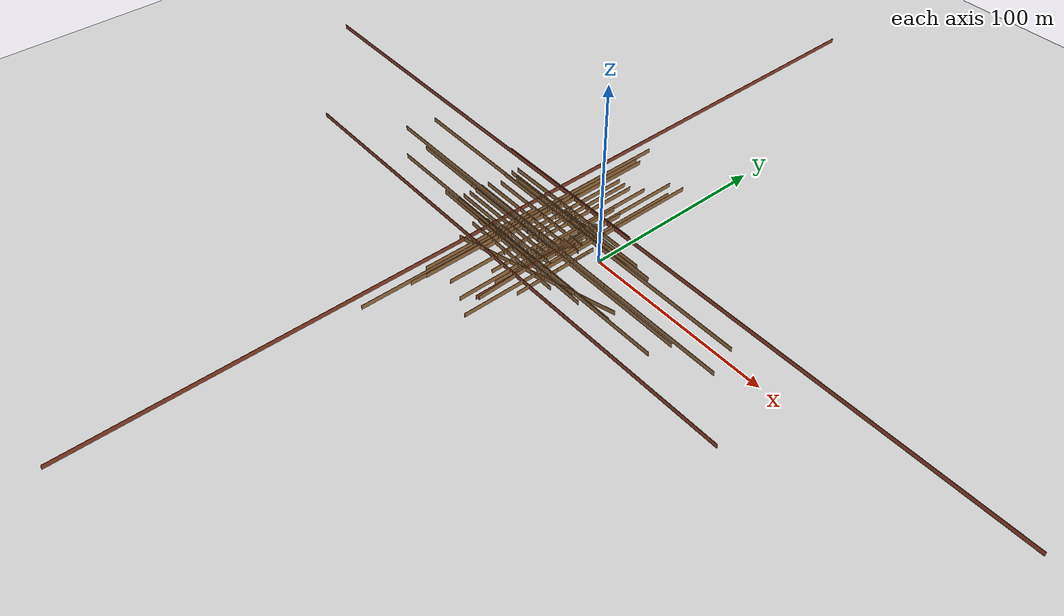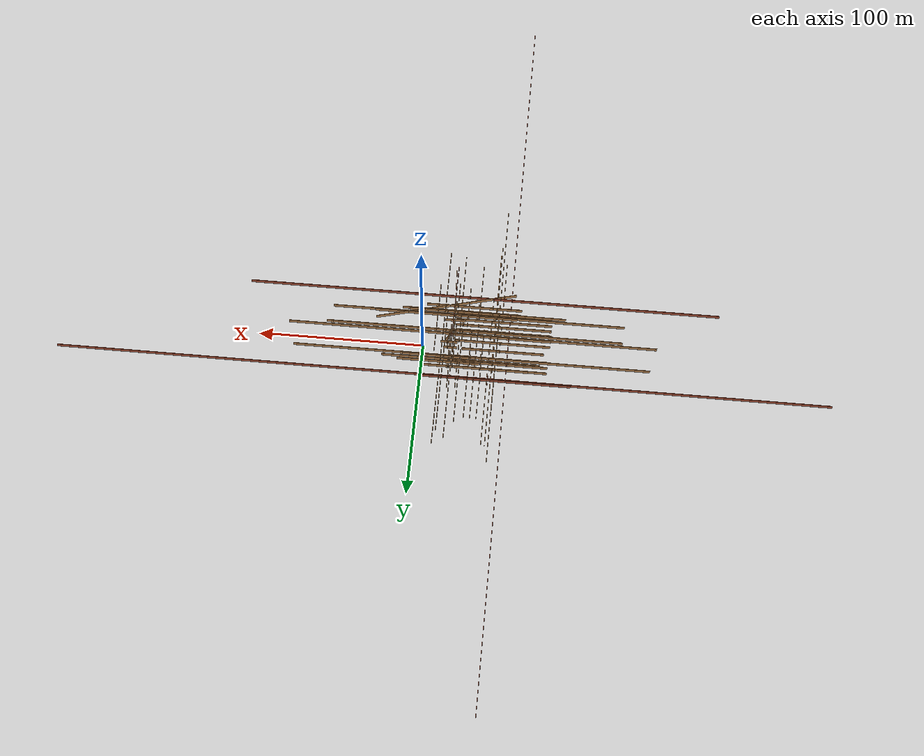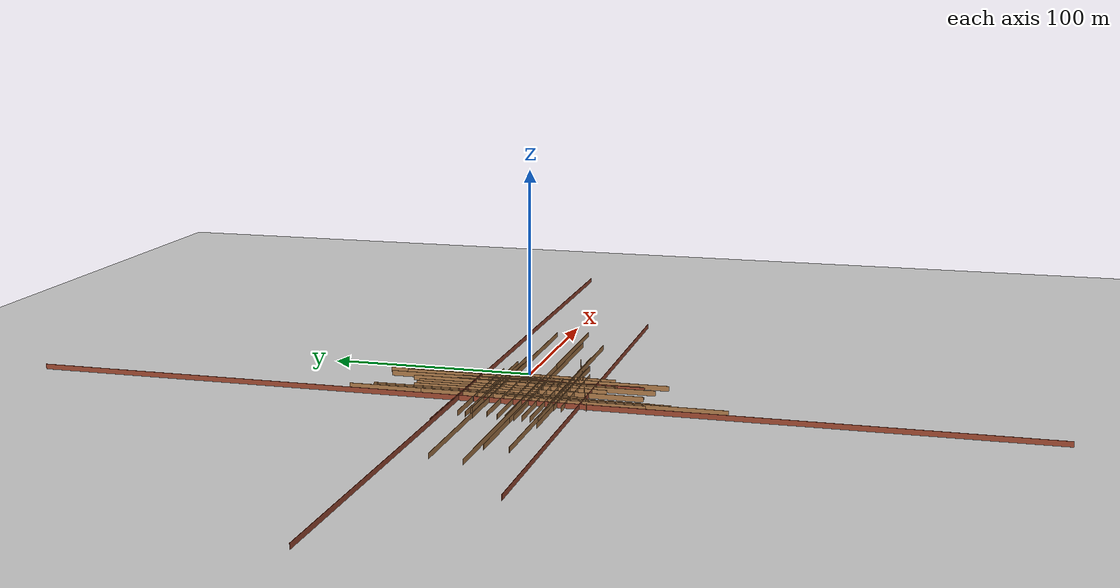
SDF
<sdf version="1.6">
 <world name="default">
  <model name="ground_plane">
   <static>1</static>
   <link name="link">
    <collision name="collision">
     <geometry><plane><normal>0 0 1</normal><size>1000 700</size></plane></geometry>
     <surface><friction><ode><mu>100</mu><mu2>50</mu2></ode></friction></surface>
    </collision>
    <visual name="visual">
     <cast_shadows>0</cast_shadows>
     <geometry><plane><normal>0 0 1</normal><size>1000 700</size></plane></geometry>
     <material>
      <ambient>1.0 1.0 1.0 1.0</ambient>
      <diffuse>0.8 0.8 0.8 1.0</diffuse>
      <specular>0.01 0.01 0.01 1.000000</specular>
     </material>
    </visual>
   </link>
  </model>
  <model name="floorPlan">
   <pose>-1.03517 -1.87284 0 0 -0 0</pose>
   <link name="Wall_101">
    <collision name="Wall_101_Collision">
     <geometry><box><size>89.50 0.15 2.50</size></box></geometry>
     <pose>0 0 1.25 0 -0 0</pose>
    </collision>
    <visual name="Wall_101_Visual">
     <pose>0 0 1.25 0 -0 0</pose>
     <geometry><box><size>89.50 0.15 2.50</size></box></geometry>
     <material>
      <script><uri>file://media/materials/scripts/gazebo.material</uri><name>Gazebo/Bricks</name></script>
      <ambient>1 1 1 1</ambient>
     </material>
     <meta><layer>0</layer></meta>
    </visual>
    <pose>-45.3755 22.7356 0 0 -0 0</pose>
   </link>
   <link name="Wall_102">
    <collision name="Wall_102_Collision">
     <geometry><box><size>6.20 0.15 2.50</size></box></geometry>
     <pose>0 0 1.25 0 -0 0</pose>
    </collision>
    <visual name="Wall_102_Visual">
     <pose>0 0 1.25 0 -0 0</pose>
     <geometry><box><size>6.20 0.15 2.50</size></box></geometry>
     <material>
      <script><uri>file://media/materials/scripts/gazebo.material</uri><name>Gazebo/Bricks</name></script>
      <ambient>1 1 1 1</ambient>
     </material>
     <meta><layer>0</layer></meta>
    </visual>
    <pose>-40.0755 22.4356 0 0 0 -1.5708</pose>
   </link>
   <link name="Wall_103">
    <collision name="Wall_103_Collision">
     <geometry><box><size>468.60 0.15 2.50</size></box></geometry>
     <pose>0 0 1.25 0 -0 0</pose>
    </collision>
    <visual name="Wall_103_Visual">
     <pose>0 0 1.25 0 -0 0</pose>
     <geometry><box><size>468.60 0.15 2.50</size></box></geometry>
     <material>
      <script><uri>file://media/materials/scripts/gazebo.material</uri><name>Gazebo/Bricks</name></script>
      <ambient>1 1 1 1</ambient>
     </material>
     <meta><layer>0</layer></meta>
    </visual>
    <pose>-12.0255 22.1356 0 0 -0 0</pose>
   </link>
   <link name="Wall_129">
    <collision name="Wall_129_Collision">
     <geometry><box><size>141.60 0.15 2.50</size></box></geometry>
     <pose>0 0 1.25 0 -0 0</pose>
    </collision>
    <visual name="Wall_129_Visual">
     <pose>0 0 1.25 0 -0 0</pose>
     <geometry><box><size>141.60 0.15 2.50</size></box></geometry>
     <material>
      <script><uri>file://media/materials/scripts/gazebo.material</uri><name>Gazebo/Wood</name></script>
      <ambient>1 1 1 1</ambient>
     </material>
     <meta><layer>0</layer></meta>
    </visual>
    <pose>-9.61757 -10.458 0 0 -0 3.14159</pose>
   </link>
   <link name="Wall_130">
    <collision name="Wall_130_Collision">
     <geometry><box><size>62.50 0.15 2.50</size></box></geometry>
     <pose>0 0 1.25 0 -0 0</pose>
    </collision>
    <visual name="Wall_130_Visual">
     <pose>0 0 1.25 0 -0 0</pose>
     <geometry><box><size>62.50 0.15 2.50</size></box></geometry>
     <material>
      <script><uri>file://media/materials/scripts/gazebo.material</uri><name>Gazebo/Wood</name></script>
      <ambient>1 1 1 1</ambient>
     </material>
     <meta><layer>0</layer></meta>
    </visual>
    <pose>-18.0426 -14.133 0 0 0 -1.5708</pose>
   </link>
   <link name="Wall_131">
    <collision name="Wall_131_Collision">
     <geometry><box><size>12.50 0.15 2.50</size></box></geometry>
     <pose>0 0 1.25 0 -0 0</pose>
    </collision>
    <visual name="Wall_131_Visual">
     <pose>0 0 1.25 0 -0 0</pose>
     <geometry><box><size>12.50 0.15 2.50</size></box></geometry>
     <material>
      <script><uri>file://media/materials/scripts/gazebo.material</uri><name>Gazebo/Wood</name></script>
      <ambient>1 1 1 1</ambient>
     </material>
     <meta><layer>0</layer></meta>
    </visual>
    <pose>-17.3676 -17.808 0 0 -0 0</pose>
   </link>
   <link name="Wall_133">
    <collision name="Wall_133_Collision">
     <geometry><box><size>87.50 0.15 2.50</size></box></geometry>
     <pose>0 0 1.25 0 -0 0</pose>
    </collision>
    <visual name="Wall_133_Visual">
     <pose>0 0 1.25 0 -0 0</pose>
     <geometry><box><size>87.50 0.15 2.50</size></box></geometry>
     <material>
      <script><uri>file://media/materials/scripts/gazebo.material</uri><name>Gazebo/Wood</name></script>
      <ambient>1 1 1 1</ambient>
     </material>
     <meta><layer>0</layer></meta>
    </visual>
    <pose>-11.2193 -21.215 0 0 -0 0</pose>
   </link>
   <link name="Wall_134">
    <collision name="Wall_134_Collision">
     <geometry><box><size>6.90 0.15 2.50</size></box></geometry>
     <pose>0 0 1.25 0 -0 0</pose>
    </collision>
    <visual name="Wall_134_Visual">
     <pose>0 0 1.25 0 -0 0</pose>
     <geometry><box><size>6.90 0.15 2.50</size></box></geometry>
     <material>
      <script><uri>file://media/materials/scripts/gazebo.material</uri><name>Gazebo/Wood</name></script>
      <ambient>1 1 1 1</ambient>
     </material>
     <meta><layer>0</layer></meta>
    </visual>
    <pose>-6.06127 -21.5509 0 0 0 -1.62113</pose>
   </link>
   <link name="Wall_137">
    <collision name="Wall_137_Collision">
     <geometry><box><size>64.20 0.15 2.50</size></box></geometry>
     <pose>0 0 1.25 0 -0 0</pose>
    </collision>
    <visual name="Wall_137_Visual">
     <pose>0 0 1.25 0 -0 0</pose>
     <geometry><box><size>64.20 0.15 2.50</size></box></geometry>
     <material>
      <script><uri>file://media/materials/scripts/gazebo.material</uri><name>Gazebo/Wood</name></script>
      <ambient>1 1 1 1</ambient>
     </material>
     <meta><layer>0</layer></meta>
    </visual>
    <pose>-16.2349 -24.9897 0 0 0 -1.52859</pose>
   </link>
   <link name="Wall_139">
    <collision name="Wall_139_Collision">
     <geometry><box><size>72.90 0.15 2.50</size></box></geometry>
     <pose>0 0 1.25 0 -0 0</pose>
    </collision>
    <visual name="Wall_139_Visual">
     <pose>0 0 1.25 0 -0 0</pose>
     <geometry><box><size>72.90 0.15 2.50</size></box></geometry>
     <material>
      <script><uri>file://media/materials/scripts/gazebo.material</uri><name>Gazebo/Wood</name></script>
      <ambient>1 1 1 1</ambient>
     </material>
     <meta><layer>0</layer></meta>
    </visual>
    <pose>-20.4877 -24.4086 0 0 -0 3.14159</pose>
   </link>
   <link name="Wall_140">
    <collision name="Wall_140_Collision">
     <geometry><box><size>31.20 0.15 2.50</size></box></geometry>
     <pose>0 0 1.25 0 -0 0</pose>
    </collision>
    <visual name="Wall_140_Visual">
     <pose>0 0 1.25 0 -0 0</pose>
     <geometry><box><size>31.20 0.15 2.50</size></box></geometry>
     <material>
      <script><uri>file://media/materials/scripts/gazebo.material</uri><name>Gazebo/Wood</name></script>
      <ambient>1 1 1 1</ambient>
     </material>
     <meta><layer>0</layer></meta>
    </visual>
    <pose>-24.7877 -26.2086 0 0 0 -1.5708</pose>
   </link>
   <link name="Wall_141">
    <collision name="Wall_141_Collision">
     <geometry><box><size>58.30 0.15 2.50</size></box></geometry>
     <pose>0 0 1.25 0 -0 0</pose>
    </collision>
    <visual name="Wall_141_Visual">
     <pose>0 0 1.25 0 -0 0</pose>
     <geometry><box><size>58.30 0.15 2.50</size></box></geometry>
     <material>
      <script><uri>file://media/materials/scripts/gazebo.material</uri><name>Gazebo/Wood</name></script>
      <ambient>1 1 1 1</ambient>
     </material>
     <meta><layer>0</layer></meta>
    </visual>
    <pose>-28.2127 -28.0086 0 0 -0 3.14159</pose>
   </link>
   <link name="Wall_142">
    <collision name="Wall_142_Collision">
     <geometry><box><size>58.30 0.15 2.50</size></box></geometry>
     <pose>0 0 1.25 0 -0 0</pose>
    </collision>
    <visual name="Wall_142_Visual">
     <pose>0 0 1.25 0 -0 0</pose>
     <geometry><box><size>58.30 0.15 2.50</size></box></geometry>
     <material>
      <script><uri>file://media/materials/scripts/gazebo.material</uri><name>Gazebo/Wood</name></script>
      <ambient>1 1 1 1</ambient>
     </material>
     <meta><layer>0</layer></meta>
    </visual>
    <pose>-31.6377 -31.4336 0 0 0 -1.5708</pose>
   </link>
   <link name="Wall_144">
    <collision name="Wall_144_Collision">
     <geometry><box><size>10.40 0.15 2.50</size></box></geometry>
     <pose>0 0 1.25 0 -0 0</pose>
    </collision>
    <visual name="Wall_144_Visual">
     <pose>0 0 1.25 0 -0 0</pose>
     <geometry><box><size>10.40 0.15 2.50</size></box></geometry>
     <material>
      <script><uri>file://media/materials/scripts/gazebo.material</uri><name>Gazebo/Wood</name></script>
      <ambient>1 1 1 1</ambient>
     </material>
     <meta><layer>0</layer></meta>
    </visual>
    <pose>-30.9008 -24.4847 0 0 -0 1.5708</pose>
   </link>
   <link name="Wall_146">
    <collision name="Wall_146_Collision">
     <geometry><box><size>95.80 0.15 2.50</size></box></geometry>
     <pose>0 0 1.25 0 -0 0</pose>
    </collision>
    <visual name="Wall_146_Visual">
     <pose>0 0 1.25 0 -0 0</pose>
     <geometry><box><size>95.80 0.15 2.50</size></box></geometry>
     <material>
      <script><uri>file://media/materials/scripts/gazebo.material</uri><name>Gazebo/Wood</name></script>
      <ambient>1 1 1 1</ambient>
     </material>
     <meta><layer>0</layer></meta>
    </visual>
    <pose>-36.5758 -23.9347 0 0 -0 3.14159</pose>
   </link>
   <link name="Wall_147">
    <collision name="Wall_147_Collision">
     <geometry><box><size>91.60 0.15 2.50</size></box></geometry>
     <pose>0 0 1.25 0 -0 0</pose>
    </collision>
    <visual name="Wall_147_Visual">
     <pose>0 0 1.25 0 -0 0</pose>
     <geometry><box><size>91.60 0.15 2.50</size></box></geometry>
     <material>
      <script><uri>file://media/materials/scripts/gazebo.material</uri><name>Gazebo/Wood</name></script>
      <ambient>1 1 1 1</ambient>
     </material>
     <meta><layer>0</layer></meta>
    </visual>
    <pose>-42.2508 -29.3597 0 0 0 -1.5708</pose>
   </link>
   <link name="Wall_149">
    <collision name="Wall_149_Collision">
     <geometry><box><size>66.60 0.15 2.50</size></box></geometry>
     <pose>0 0 1.25 0 -0 0</pose>
    </collision>
    <visual name="Wall_149_Visual">
     <pose>0 0 1.25 0 -0 0</pose>
     <geometry><box><size>66.60 0.15 2.50</size></box></geometry>
     <material>
      <script><uri>file://media/materials/scripts/gazebo.material</uri><name>Gazebo/Wood</name></script>
      <ambient>1 1 1 1</ambient>
     </material>
     <meta><layer>0</layer></meta>
    </visual>
    <pose>-45.7877 -30.8032 0 0 0 -1.5708</pose>
   </link>
   <link name="Wall_151">
    <collision name="Wall_151_Collision">
     <geometry><box><size>58.30 0.15 2.50</size></box></geometry>
     <pose>0 0 1.25 0 -0 0</pose>
    </collision>
    <visual name="Wall_151_Visual">
     <pose>0 0 1.25 0 -0 0</pose>
     <geometry><box><size>58.30 0.15 2.50</size></box></geometry>
     <material>
      <script><uri>file://media/materials/scripts/gazebo.material</uri><name>Gazebo/Wood</name></script>
      <ambient>1 1 1 1</ambient>
     </material>
     <meta><layer>0</layer></meta>
    </visual>
    <pose>-47.1627 -22.3564 0 0 -0 0</pose>
   </link>
   <link name="Wall_152">
    <collision name="Wall_152_Collision">
     <geometry><box><size>179.10 0.15 2.50</size></box></geometry>
     <pose>0 0 1.25 0 -0 0</pose>
    </collision>
    <visual name="Wall_152_Visual">
     <pose>0 0 1.25 0 -0 0</pose>
     <geometry><box><size>179.10 0.15 2.50</size></box></geometry>
     <material>
      <script><uri>file://media/materials/scripts/gazebo.material</uri><name>Gazebo/Wood</name></script>
      <ambient>1 1 1 1</ambient>
     </material>
     <meta><layer>0</layer></meta>
    </visual>
    <pose>-43.7377 -11.6814 0 0 -0 1.5708</pose>
   </link>
   <link name="Wall_154">
    <collision name="Wall_154_Collision">
     <geometry><box><size>95.80 0.15 2.50</size></box></geometry>
     <pose>0 0 1.25 0 -0 0</pose>
    </collision>
    <visual name="Wall_154_Visual">
     <pose>0 0 1.25 0 -0 0</pose>
     <geometry><box><size>95.80 0.15 2.50</size></box></geometry>
     <material>
      <script><uri>file://media/materials/scripts/gazebo.material</uri><name>Gazebo/Wood</name></script>
      <ambient>1 1 1 1</ambient>
     </material>
     <meta><layer>0</layer></meta>
    </visual>
    <pose>-20.5182 -16.0314 0 0 0 -1.5616</pose>
   </link>
   <link name="Wall_155">
    <collision name="Wall_155_Collision">
     <geometry><box><size>179.10 0.15 2.50</size></box></geometry>
     <pose>0 0 1.25 0 -0 0</pose>
    </collision>
    <visual name="Wall_155_Visual">
     <pose>0 0 1.25 0 -0 0</pose>
     <geometry><box><size>179.10 0.15 2.50</size></box></geometry>
     <material>
      <script><uri>file://media/materials/scripts/gazebo.material</uri><name>Gazebo/Wood</name></script>
      <ambient>1 1 1 1</ambient>
     </material>
     <meta><layer>0</layer></meta>
    </visual>
    <pose>-31.1758 -21.7064 0 0 -0 3.14159</pose>
   </link>
   <link name="Wall_158">
    <collision name="Wall_158_Collision">
     <geometry><box><size>95.80 0.15 2.50</size></box></geometry>
     <pose>0 0 1.25 0 -0 0</pose>
    </collision>
    <visual name="Wall_158_Visual">
     <pose>0 0 1.25 0 -0 0</pose>
     <geometry><box><size>95.80 0.15 2.50</size></box></geometry>
     <material>
      <script><uri>file://media/materials/scripts/gazebo.material</uri><name>Gazebo/Wood</name></script>
      <ambient>1 1 1 1</ambient>
     </material>
     <meta><layer>0</layer></meta>
    </visual>
    <pose>-41.8508 -16.0314 0 0 -0 1.5708</pose>
   </link>
   <link name="Wall_159">
    <collision name="Wall_159_Collision">
     <geometry><box><size>177.00 0.15 2.50</size></box></geometry>
     <pose>0 0 1.25 0 -0 0</pose>
    </collision>
    <visual name="Wall_159_Visual">
     <pose>0 0 1.25 0 -0 0</pose>
     <geometry><box><size>177.00 0.15 2.50</size></box></geometry>
     <material>
      <script><uri>file://media/materials/scripts/gazebo.material</uri><name>Gazebo/Wood</name></script>
      <ambient>1 1 1 1</ambient>
     </material>
     <meta><layer>0</layer></meta>
    </visual>
    <pose>-31.3008 -10.3564 0 0 -0 0</pose>
   </link>
   <link name="Wall_161">
    <collision name="Wall_161_Collision">
     <geometry><box><size>41.70 0.15 2.50</size></box></geometry>
     <pose>0 0 1.25 0 -0 0</pose>
    </collision>
    <visual name="Wall_161_Visual">
     <pose>0 0 1.25 0 -0 0</pose>
     <geometry><box><size>41.70 0.15 2.50</size></box></geometry>
     <material>
      <script><uri>file://media/materials/scripts/gazebo.material</uri><name>Gazebo/Wood</name></script>
      <ambient>1 1 1 1</ambient>
     </material>
     <meta><layer>0</layer></meta>
    </visual>
    <pose>-7.97942 8.30014 0 0 -0 3.14159</pose>
   </link>
   <link name="Wall_162">
    <collision name="Wall_162_Collision">
     <geometry><box><size>137.40 0.15 2.50</size></box></geometry>
     <pose>0 0 1.25 0 -0 0</pose>
    </collision>
    <visual name="Wall_162_Visual">
     <pose>0 0 1.25 0 -0 0</pose>
     <geometry><box><size>137.40 0.15 2.50</size></box></geometry>
     <material>
      <script><uri>file://media/materials/scripts/gazebo.material</uri><name>Gazebo/Wood</name></script>
      <ambient>1 1 1 1</ambient>
     </material>
     <meta><layer>0</layer></meta>
    </visual>
    <pose>-10.4044 0.125141 0 0 0 -1.5708</pose>
   </link>
   <link name="Wall_163">
    <collision name="Wall_163_Collision">
     <geometry><box><size>45.80 0.15 2.50</size></box></geometry>
     <pose>0 0 1.25 0 -0 0</pose>
    </collision>
    <visual name="Wall_163_Visual">
     <pose>0 0 1.25 0 -0 0</pose>
     <geometry><box><size>45.80 0.15 2.50</size></box></geometry>
     <material>
      <script><uri>file://media/materials/scripts/gazebo.material</uri><name>Gazebo/Wood</name></script>
      <ambient>1 1 1 1</ambient>
     </material>
     <meta><layer>0</layer></meta>
    </visual>
    <pose>-7.72942 -8.04986 0 0 -0 0</pose>
   </link>
   <link name="Wall_169">
    <collision name="Wall_169_Collision">
     <geometry><box><size>6.20 0.15 2.50</size></box></geometry>
     <pose>0 0 1.25 0 -0 0</pose>
    </collision>
    <visual name="Wall_169_Visual">
     <pose>0 0 1.25 0 -0 0</pose>
     <geometry><box><size>6.20 0.15 2.50</size></box></geometry>
     <material>
      <script><uri>file://media/materials/scripts/gazebo.material</uri><name>Gazebo/Wood</name></script>
      <ambient>1 1 1 1</ambient>
     </material>
     <meta><layer>0</layer></meta>
    </visual>
    <pose>-6.04 -1.72161 0 0 -0 1.5708</pose>
   </link>
   <link name="Wall_170">
    <collision name="Wall_170_Collision">
     <geometry><box><size>10.40 0.15 2.50</size></box></geometry>
     <pose>0 0 1.25 0 -0 0</pose>
    </collision>
    <visual name="Wall_170_Visual">
     <pose>0 0 1.25 0 -0 0</pose>
     <geometry><box><size>10.40 0.15 2.50</size></box></geometry>
     <material>
      <script><uri>file://media/materials/scripts/gazebo.material</uri><name>Gazebo/Wood</name></script>
      <ambient>1 1 1 1</ambient>
     </material>
     <meta><layer>0</layer></meta>
    </visual>
    <pose>-6.04 -0.871614 0 0 -0 1.5708</pose>
   </link>
   <link name="Wall_182">
    <collision name="Wall_182_Collision">
     <geometry><box><size>224.90 0.15 2.50</size></box></geometry>
     <pose>0 0 1.25 0 -0 0</pose>
    </collision>
    <visual name="Wall_182_Visual">
     <pose>0 0 1.25 0 -0 0</pose>
     <geometry><box><size>224.90 0.15 2.50</size></box></geometry>
     <material>
      <script><uri>file://media/materials/scripts/gazebo.material</uri><name>Gazebo/Wood</name></script>
      <ambient>1 1 1 1</ambient>
     </material>
     <meta><layer>0</layer></meta>
    </visual>
    <pose>-28.3707 -8.0129 0 0 -0 3.14159</pose>
   </link>
   <link name="Wall_184">
    <collision name="Wall_184_Collision">
     <geometry><box><size>133.30 0.15 2.50</size></box></geometry>
     <pose>0 0 1.25 0 -0 0</pose>
    </collision>
    <visual name="Wall_184_Visual">
     <pose>0 0 1.25 0 -0 0</pose>
     <geometry><box><size>133.30 0.15 2.50</size></box></geometry>
     <material>
      <script><uri>file://media/materials/scripts/gazebo.material</uri><name>Gazebo/Wood</name></script>
      <ambient>1 1 1 1</ambient>
     </material>
     <meta><layer>0</layer></meta>
    </visual>
    <pose>-41.7957 -0.087903 0 0 -0 1.5708</pose>
   </link>
   <link name="Wall_185">
    <collision name="Wall_185_Collision">
     <geometry><box><size>216.60 0.15 2.50</size></box></geometry>
     <pose>0 0 1.25 0 -0 0</pose>
    </collision>
    <visual name="Wall_185_Visual">
     <pose>0 0 1.25 0 -0 0</pose>
     <geometry><box><size>216.60 0.15 2.50</size></box></geometry>
     <material>
      <script><uri>file://media/materials/scripts/gazebo.material</uri><name>Gazebo/Wood</name></script>
      <ambient>1 1 1 1</ambient>
     </material>
     <meta><layer>0</layer></meta>
    </visual>
    <pose>-28.8707 7.8371 0 0 -0 0</pose>
   </link>
   <link name="Wall_186">
    <collision name="Wall_186_Collision">
     <geometry><box><size>52.10 0.15 2.50</size></box></geometry>
     <pose>0 0 1.25 0 -0 0</pose>
    </collision>
    <visual name="Wall_186_Visual">
     <pose>0 0 1.25 0 -0 0</pose>
     <geometry><box><size>52.10 0.15 2.50</size></box></geometry>
     <material>
      <script><uri>file://media/materials/scripts/gazebo.material</uri><name>Gazebo/Wood</name></script>
      <ambient>1 1 1 1</ambient>
     </material>
     <meta><layer>0</layer></meta>
    </visual>
    <pose>-15.9457 4.7871 0 0 0 -1.5708</pose>
   </link>
   <link name="Wall_187">
    <collision name="Wall_187_Collision">
     <geometry><box><size>8.30 0.15 2.50</size></box></geometry>
     <pose>0 0 1.25 0 -0 0</pose>
    </collision>
    <visual name="Wall_187_Visual">
     <pose>0 0 1.25 0 -0 0</pose>
     <geometry><box><size>8.30 0.15 2.50</size></box></geometry>
     <material>
      <script><uri>file://media/materials/scripts/gazebo.material</uri><name>Gazebo/Wood</name></script>
      <ambient>1 1 1 1</ambient>
     </material>
     <meta><layer>0</layer></meta>
    </visual>
    <pose>-15.5207 1.7371 0 0 -0 0</pose>
   </link>
   <link name="Wall_188">
    <collision name="Wall_188_Collision">
     <geometry><box><size>33.30 0.15 2.50</size></box></geometry>
     <pose>0 0 1.25 0 -0 0</pose>
    </collision>
    <visual name="Wall_188_Visual">
     <pose>0 0 1.25 0 -0 0</pose>
     <geometry><box><size>33.30 0.15 2.50</size></box></geometry>
     <material>
      <script><uri>file://media/materials/scripts/gazebo.material</uri><name>Gazebo/Wood</name></script>
      <ambient>1 1 1 1</ambient>
     </material>
     <meta><layer>0</layer></meta>
    </visual>
    <pose>-15.0957 -0.187903 0 0 0 -1.5708</pose>
   </link>
   <link name="Wall_189">
    <collision name="Wall_189_Collision">
     <geometry><box><size>10.40 0.15 2.50</size></box></geometry>
     <pose>0 0 1.25 0 -0 0</pose>
    </collision>
    <visual name="Wall_189_Visual">
     <pose>0 0 1.25 0 -0 0</pose>
     <geometry><box><size>10.40 0.15 2.50</size></box></geometry>
     <material>
      <script><uri>file://media/materials/scripts/gazebo.material</uri><name>Gazebo/Wood</name></script>
      <ambient>1 1 1 1</ambient>
     </material>
     <meta><layer>0</layer></meta>
    </visual>
    <pose>-14.5457 -2.1129 0 0 -0 0</pose>
   </link>
   <link name="Wall_190">
    <collision name="Wall_190_Collision">
     <geometry><box><size>13.90 0.15 2.50</size></box></geometry>
     <pose>0 0 1.25 0 -0 0</pose>
    </collision>
    <visual name="Wall_190_Visual">
     <pose>0 0 1.25 0 -0 0</pose>
     <geometry><box><size>13.90 0.15 2.50</size></box></geometry>
     <material>
      <script><uri>file://media/materials/scripts/gazebo.material</uri><name>Gazebo/Wood</name></script>
      <ambient>1 1 1 1</ambient>
     </material>
     <meta><layer>0</layer></meta>
    </visual>
    <pose>-14.0185 -2.8716 0 0 0 -1.60087</pose>
   </link>
   <link name="Wall_191">
    <collision name="Wall_191_Collision">
     <geometry><box><size>11.10 0.15 2.50</size></box></geometry>
     <pose>0 0 1.25 0 -0 0</pose>
    </collision>
    <visual name="Wall_191_Visual">
     <pose>0 0 1.25 0 -0 0</pose>
     <geometry><box><size>11.10 0.15 2.50</size></box></geometry>
     <material>
      <script><uri>file://media/materials/scripts/gazebo.material</uri><name>Gazebo/Wood</name></script>
      <ambient>1 1 1 1</ambient>
     </material>
     <meta><layer>0</layer></meta>
    </visual>
    <pose>-14.0762 -4.2216 0 0 0 -1.62955</pose>
   </link>
   <link name="Wall_192">
    <collision name="Wall_192_Collision">
     <geometry><box><size>8.10 0.15 2.50</size></box></geometry>
     <pose>0 0 1.25 0 -0 0</pose>
    </collision>
    <visual name="Wall_192_Visual">
     <pose>0 0 1.25 0 -0 0</pose>
     <geometry><box><size>8.10 0.15 2.50</size></box></geometry>
     <material>
      <script><uri>file://media/materials/scripts/gazebo.material</uri><name>Gazebo/Wood</name></script>
      <ambient>1 1 1 1</ambient>
     </material>
     <meta><layer>0</layer></meta>
    </visual>
    <pose>-14.1979 -5.2129 0 0 0 -1.78486</pose>
   </link>
   <link name="Wall_193">
    <collision name="Wall_193_Collision">
     <geometry><box><size>11.50 0.15 2.50</size></box></geometry>
     <pose>0 0 1.25 0 -0 0</pose>
    </collision>
    <visual name="Wall_193_Visual">
     <pose>0 0 1.25 0 -0 0</pose>
     <geometry><box><size>11.50 0.15 2.50</size></box></geometry>
     <material>
      <script><uri>file://media/materials/scripts/gazebo.material</uri><name>Gazebo/Wood</name></script>
      <ambient>1 1 1 1</ambient>
     </material>
     <meta><layer>0</layer></meta>
    </visual>
    <pose>-14.3718 -6.2216 0 0 0 -1.71269</pose>
   </link>
   <link name="Wall_194">
    <collision name="Wall_194_Collision">
     <geometry><box><size>10.10 0.15 2.50</size></box></geometry>
     <pose>0 0 1.25 0 -0 0</pose>
    </collision>
    <visual name="Wall_194_Visual">
     <pose>0 0 1.25 0 -0 0</pose>
     <geometry><box><size>10.10 0.15 2.50</size></box></geometry>
     <material>
      <script><uri>file://media/materials/scripts/gazebo.material</uri><name>Gazebo/Wood</name></script>
      <ambient>1 1 1 1</ambient>
     </material>
     <meta><layer>0</layer></meta>
    </visual>
    <pose>-14.7022 -7.29986 0 0 0 -2.04915</pose>
   </link>
   <link name="Wall_195">
    <collision name="Wall_195_Collision">
     <geometry><box><size>4.00 0.15 2.50</size></box></geometry>
     <pose>0 0 1.25 0 -0 0</pose>
    </collision>
    <visual name="Wall_195_Visual">
     <pose>0 0 1.25 0 -0 0</pose>
     <geometry><box><size>4.00 0.15 2.50</size></box></geometry>
     <material>
      <script><uri>file://media/materials/scripts/gazebo.material</uri><name>Gazebo/Wood</name></script>
      <ambient>1 1 1 1</ambient>
     </material>
     <meta><layer>0</layer></meta>
    </visual>
    <pose>-14.8935 -7.92595 0 0 0 -1.24905</pose>
   </link>
   <link name="Wall_198">
    <collision name="Wall_198_Collision">
     <geometry><box><size>50.00 0.15 2.50</size></box></geometry>
     <pose>0 0 1.25 0 -0 0</pose>
    </collision>
    <visual name="Wall_198_Visual">
     <pose>0 0 1.25 0 -0 0</pose>
     <geometry><box><size>50.00 0.15 2.50</size></box></geometry>
     <material>
      <script><uri>file://media/materials/scripts/gazebo.material</uri><name>Gazebo/Wood</name></script>
      <ambient>1 1 1 1</ambient>
     </material>
     <meta><layer>0</layer></meta>
    </visual>
    <pose>-47.8468 1.90014 0 0 -0 0</pose>
   </link>
   <link name="Wall_200">
    <collision name="Wall_200_Collision">
     <geometry><box><size>25.00 0.15 2.50</size></box></geometry>
     <pose>0 0 1.25 0 -0 0</pose>
    </collision>
    <visual name="Wall_200_Visual">
     <pose>0 0 1.25 0 -0 0</pose>
     <geometry><box><size>25.00 0.15 2.50</size></box></geometry>
     <material>
      <script><uri>file://media/materials/scripts/gazebo.material</uri><name>Gazebo/Wood</name></script>
      <ambient>1 1 1 1</ambient>
     </material>
     <meta><layer>0</layer></meta>
    </visual>
    <pose>-43.8501 6.14253 0 0 -0 1.5708</pose>
   </link>
   <link name="Wall_201">
    <collision name="Wall_201_Collision">
     <geometry><box><size>58.30 0.15 2.50</size></box></geometry>
     <pose>0 0 1.25 0 -0 0</pose>
    </collision>
    <visual name="Wall_201_Visual">
     <pose>0 0 1.25 0 -0 0</pose>
     <geometry><box><size>58.30 0.15 2.50</size></box></geometry>
     <material>
      <script><uri>file://media/materials/scripts/gazebo.material</uri><name>Gazebo/Wood</name></script>
      <ambient>1 1 1 1</ambient>
     </material>
     <meta><layer>0</layer></meta>
    </visual>
    <pose>-47.2751 7.56753 0 0 -0 3.14159</pose>
   </link>
   <link name="Wall_204">
    <collision name="Wall_204_Collision">
     <geometry><box><size>62.50 0.15 2.50</size></box></geometry>
     <pose>0 0 1.25 0 -0 0</pose>
    </collision>
    <visual name="Wall_204_Visual">
     <pose>0 0 1.25 0 -0 0</pose>
     <geometry><box><size>62.50 0.15 2.50</size></box></geometry>
     <material>
      <script><uri>file://media/materials/scripts/gazebo.material</uri><name>Gazebo/Wood</name></script>
      <ambient>1 1 1 1</ambient>
     </material>
     <meta><layer>0</layer></meta>
    </visual>
    <pose>-43.8501 11.2425 0 0 -0 1.5708</pose>
   </link>
   <link name="Wall_205">
    <collision name="Wall_205_Collision">
     <geometry><box><size>56.20 0.15 2.50</size></box></geometry>
     <pose>0 0 1.25 0 -0 0</pose>
    </collision>
    <visual name="Wall_205_Visual">
     <pose>0 0 1.25 0 -0 0</pose>
     <geometry><box><size>56.20 0.15 2.50</size></box></geometry>
     <material>
      <script><uri>file://media/materials/scripts/gazebo.material</uri><name>Gazebo/Wood</name></script>
      <ambient>1 1 1 1</ambient>
     </material>
     <meta><layer>0</layer></meta>
    </visual>
    <pose>-47.1501 14.9175 0 0 -0 3.14159</pose>
   </link>
   <link name="Wall_207">
    <collision name="Wall_207_Collision">
     <geometry><box><size>2.10 0.15 2.50</size></box></geometry>
     <pose>0 0 1.25 0 -0 0</pose>
    </collision>
    <visual name="Wall_207_Visual">
     <pose>0 0 1.25 0 -0 0</pose>
     <geometry><box><size>2.10 0.15 2.50</size></box></geometry>
     <material>
      <script><uri>file://media/materials/scripts/gazebo.material</uri><name>Gazebo/Grey</name></script>
      <ambient>1 1 1 1</ambient>
     </material>
     <meta><layer>0</layer></meta>
    </visual>
    <pose>-50.5001 14.9175 0 0 -0 3.14159</pose>
   </link>
   <link name="Wall_209">
    <collision name="Wall_209_Collision">
     <geometry><box><size>60.40 0.15 2.50</size></box></geometry>
     <pose>0 0 1.25 0 -0 0</pose>
    </collision>
    <visual name="Wall_209_Visual">
     <pose>0 0 1.25 0 -0 0</pose>
     <geometry><box><size>60.40 0.15 2.50</size></box></geometry>
     <material>
      <script><uri>file://media/materials/scripts/gazebo.material</uri><name>Gazebo/Wood</name></script>
      <ambient>1 1 1 1</ambient>
     </material>
     <meta><layer>0</layer></meta>
    </visual>
    <pose>-38.2131 10.0741 0 0 -0 0</pose>
   </link>
   <link name="Wall_210">
    <collision name="Wall_210_Collision">
     <geometry><box><size>10.40 0.15 2.50</size></box></geometry>
     <pose>0 0 1.25 0 -0 0</pose>
    </collision>
    <visual name="Wall_210_Visual">
     <pose>0 0 1.25 0 -0 0</pose>
     <geometry><box><size>10.40 0.15 2.50</size></box></geometry>
     <material>
      <script><uri>file://media/materials/scripts/gazebo.material</uri><name>Gazebo/Wood</name></script>
      <ambient>1 1 1 1</ambient>
     </material>
     <meta><layer>0</layer></meta>
    </visual>
    <pose>-34.6631 10.6241 0 0 -0 1.5708</pose>
   </link>
   <link name="Wall_212">
    <collision name="Wall_212_Collision">
     <geometry><box><size>8.30 0.15 2.50</size></box></geometry>
     <pose>0 0 1.25 0 -0 0</pose>
    </collision>
    <visual name="Wall_212_Visual">
     <pose>0 0 1.25 0 -0 0</pose>
     <geometry><box><size>8.30 0.15 2.50</size></box></geometry>
     <material>
      <script><uri>file://media/materials/scripts/gazebo.material</uri><name>Gazebo/Wood</name></script>
      <ambient>1 1 1 1</ambient>
     </material>
     <meta><layer>0</layer></meta>
    </visual>
    <pose>-41.7631 10.4991 0 0 -0 1.5708</pose>
   </link>
   <link name="Wall_214">
    <collision name="Wall_214_Collision">
     <geometry><box><size>102.00 0.15 2.50</size></box></geometry>
     <pose>0 0 1.25 0 -0 0</pose>
    </collision>
    <visual name="Wall_214_Visual">
     <pose>0 0 1.25 0 -0 0</pose>
     <geometry><box><size>102.00 0.15 2.50</size></box></geometry>
     <material>
      <script><uri>file://media/materials/scripts/gazebo.material</uri><name>Gazebo/Wood</name></script>
      <ambient>1 1 1 1</ambient>
     </material>
     <meta><layer>0</layer></meta>
    </visual>
    <pose>-39.537 16.0936 0 0 0 -1.5708</pose>
   </link>
   <link name="Wall_216">
    <collision name="Wall_216_Collision">
     <geometry><box><size>60.40 0.15 2.50</size></box></geometry>
     <pose>0 0 1.25 0 -0 0</pose>
    </collision>
    <visual name="Wall_216_Visual">
     <pose>0 0 1.25 0 -0 0</pose>
     <geometry><box><size>60.40 0.15 2.50</size></box></geometry>
     <material>
      <script><uri>file://media/materials/scripts/gazebo.material</uri><name>Gazebo/Wood</name></script>
      <ambient>1 1 1 1</ambient>
     </material>
     <meta><layer>0</layer></meta>
    </visual>
    <pose>-35.3283 18.5936 0 0 0 -1.5708</pose>
   </link>
   <link name="Wall_217">
    <collision name="Wall_217_Collision">
     <geometry><box><size>64.60 0.15 2.50</size></box></geometry>
     <pose>0 0 1.25 0 -0 0</pose>
    </collision>
    <visual name="Wall_217_Visual">
     <pose>0 0 1.25 0 -0 0</pose>
     <geometry><box><size>64.60 0.15 2.50</size></box></geometry>
     <material>
      <script><uri>file://media/materials/scripts/gazebo.material</uri><name>Gazebo/Wood</name></script>
      <ambient>1 1 1 1</ambient>
     </material>
     <meta><layer>0</layer></meta>
    </visual>
    <pose>-31.5283 15.0436 0 0 -0 0</pose>
   </link>
   <link name="Wall_218">
    <collision name="Wall_218_Collision">
     <geometry><box><size>60.40 0.15 2.50</size></box></geometry>
     <pose>0 0 1.25 0 -0 0</pose>
    </collision>
    <visual name="Wall_218_Visual">
     <pose>0 0 1.25 0 -0 0</pose>
     <geometry><box><size>60.40 0.15 2.50</size></box></geometry>
     <material>
      <script><uri>file://media/materials/scripts/gazebo.material</uri><name>Gazebo/Wood</name></script>
      <ambient>1 1 1 1</ambient>
     </material>
     <meta><layer>0</layer></meta>
    </visual>
    <pose>-27.7283 18.5936 0 0 -0 1.5708</pose>
   </link>
   <link name="Wall_220">
    <collision name="Wall_220_Collision">
     <geometry><box><size>8.30 0.15 2.50</size></box></geometry>
     <pose>0 0 1.25 0 -0 0</pose>
    </collision>
    <visual name="Wall_220_Visual">
     <pose>0 0 1.25 0 -0 0</pose>
     <geometry><box><size>8.30 0.15 2.50</size></box></geometry>
     <material>
      <script><uri>file://media/materials/scripts/gazebo.material</uri><name>Gazebo/Wood</name></script>
      <ambient>1 1 1 1</ambient>
     </material>
     <meta><layer>0</layer></meta>
    </visual>
    <pose>-28.3718 10.7273 0 0 0 -1.5708</pose>
   </link>
   <link name="Wall_221">
    <collision name="Wall_221_Collision">
     <geometry><box><size>95.80 0.15 2.50</size></box></geometry>
     <pose>0 0 1.25 0 -0 0</pose>
    </collision>
    <visual name="Wall_221_Visual">
     <pose>0 0 1.25 0 -0 0</pose>
     <geometry><box><size>95.80 0.15 2.50</size></box></geometry>
     <material>
      <script><uri>file://media/materials/scripts/gazebo.material</uri><name>Gazebo/Wood</name></script>
      <ambient>1 1 1 1</ambient>
     </material>
     <meta><layer>0</layer></meta>
    </visual>
    <pose>-22.6968 10.3023 0 0 -0 0</pose>
   </link>
   <link name="Wall_222">
    <collision name="Wall_222_Collision">
     <geometry><box><size>100.00 0.15 2.50</size></box></geometry>
     <pose>0 0 1.25 0 -0 0</pose>
    </collision>
    <visual name="Wall_222_Visual">
     <pose>0 0 1.25 0 -0 0</pose>
     <geometry><box><size>100.00 0.15 2.50</size></box></geometry>
     <material>
      <script><uri>file://media/materials/scripts/gazebo.material</uri><name>Gazebo/Wood</name></script>
      <ambient>1 1 1 1</ambient>
     </material>
     <meta><layer>0</layer></meta>
    </visual>
    <pose>-17.0218 16.2273 0 0 -0 1.5708</pose>
   </link>
   <link name="Wall_224">
    <collision name="Wall_224_Collision">
     <geometry><box><size>70.80 0.15 2.50</size></box></geometry>
     <pose>0 0 1.25 0 -0 0</pose>
    </collision>
    <visual name="Wall_224_Visual">
     <pose>0 0 1.25 0 -0 0</pose>
     <geometry><box><size>70.80 0.15 2.50</size></box></geometry>
     <material>
      <script><uri>file://media/materials/scripts/gazebo.material</uri><name>Gazebo/Wood</name></script>
      <ambient>1 1 1 1</ambient>
     </material>
     <meta><layer>0</layer></meta>
    </visual>
    <pose>-22.1805 18.0034 0 0 0 -1.5708</pose>
   </link>
   <link name="Wall_226">
    <collision name="Wall_226_Collision">
     <geometry><box><size>85.40 0.15 2.50</size></box></geometry>
     <pose>0 0 1.25 0 -0 0</pose>
    </collision>
    <visual name="Wall_226_Visual">
     <pose>0 0 1.25 0 -0 0</pose>
     <geometry><box><size>85.40 0.15 2.50</size></box></geometry>
     <material>
      <script><uri>file://media/materials/scripts/gazebo.material</uri><name>Gazebo/Wood</name></script>
      <ambient>1 1 1 1</ambient>
     </material>
     <meta><layer>0</layer></meta>
    </visual>
    <pose>-12.024 17.1632 0 0 0 -1.5708</pose>
   </link>
   <link name="Wall_227">
    <collision name="Wall_227_Collision">
     <geometry><box><size>50.00 0.15 2.50</size></box></geometry>
     <pose>0 0 1.25 0 -0 0</pose>
    </collision>
    <visual name="Wall_227_Visual">
     <pose>0 0 1.25 0 -0 0</pose>
     <geometry><box><size>50.00 0.15 2.50</size></box></geometry>
     <material>
      <script><uri>file://media/materials/scripts/gazebo.material</uri><name>Gazebo/Wood</name></script>
      <ambient>1 1 1 1</ambient>
     </material>
     <meta><layer>0</layer></meta>
    </visual>
    <pose>-9.09898 12.1132 0 0 -0 0</pose>
   </link>
   <link name="Wall_250">
    <collision name="Wall_250_Collision">
     <geometry><box><size>58.30 0.15 2.50</size></box></geometry>
     <pose>0 0 1.25 0 -0 0</pose>
    </collision>
    <visual name="Wall_250_Visual">
     <pose>0 0 1.25 0 -0 0</pose>
     <geometry><box><size>58.30 0.15 2.50</size></box></geometry>
     <material>
      <script><uri>file://media/materials/scripts/gazebo.material</uri><name>Gazebo/Wood</name></script>
      <ambient>1 1 1 1</ambient>
     </material>
     <meta><layer>0</layer></meta>
    </visual>
    <pose>-47.1009 -3.6289 0 0 -0 0</pose>
   </link>
   <link name="Wall_253">
    <collision name="Wall_253_Collision">
     <geometry><box><size>58.30 0.15 2.50</size></box></geometry>
     <pose>0 0 1.25 0 -0 0</pose>
    </collision>
    <visual name="Wall_253_Visual">
     <pose>0 0 1.25 0 -0 0</pose>
     <geometry><box><size>58.30 0.15 2.50</size></box></geometry>
     <material>
      <script><uri>file://media/materials/scripts/gazebo.material</uri><name>Gazebo/Wood</name></script>
      <ambient>1 1 1 1</ambient>
     </material>
     <meta><layer>0</layer></meta>
    </visual>
    <pose>-47.3107 -7.5117 0 0 -0 0</pose>
   </link>
   <link name="Wall_255">
    <collision name="Wall_255_Collision">
     <geometry><box><size>58.30 0.15 2.50</size></box></geometry>
     <pose>0 0 1.25 0 -0 0</pose>
    </collision>
    <visual name="Wall_255_Visual">
     <pose>0 0 1.25 0 -0 0</pose>
     <geometry><box><size>58.30 0.15 2.50</size></box></geometry>
     <material>
      <script><uri>file://media/materials/scripts/gazebo.material</uri><name>Gazebo/Wood</name></script>
      <ambient>1 1 1 1</ambient>
     </material>
     <meta><layer>0</layer></meta>
    </visual>
    <pose>-47.3107 -11.2546 0 0 -0 0</pose>
   </link>
   <link name="Wall_257">
    <collision name="Wall_257_Collision">
     <geometry><box><size>58.30 0.15 2.50</size></box></geometry>
     <pose>0 0 1.25 0 -0 0</pose>
    </collision>
    <visual name="Wall_257_Visual">
     <pose>0 0 1.25 0 -0 0</pose>
     <geometry><box><size>58.30 0.15 2.50</size></box></geometry>
     <material>
      <script><uri>file://media/materials/scripts/gazebo.material</uri><name>Gazebo/Wood</name></script>
      <ambient>1 1 1 1</ambient>
     </material>
     <meta><layer>0</layer></meta>
    </visual>
    <pose>-47.2408 -14.9275 0 0 -0 0</pose>
   </link>
   <link name="Wall_259">
    <collision name="Wall_259_Collision">
     <geometry><box><size>58.30 0.15 2.50</size></box></geometry>
     <pose>0 0 1.25 0 -0 0</pose>
    </collision>
    <visual name="Wall_259_Visual">
     <pose>0 0 1.25 0 -0 0</pose>
     <geometry><box><size>58.30 0.15 2.50</size></box></geometry>
     <material>
      <script><uri>file://media/materials/scripts/gazebo.material</uri><name>Gazebo/Wood</name></script>
      <ambient>1 1 1 1</ambient>
     </material>
     <meta><layer>0</layer></meta>
    </visual>
    <pose>-47.2758 -18.6354 0 0 -0 0</pose>
   </link>
   <link name="Wall_261">
    <collision name="Wall_261_Collision">
     <geometry><box><size>56.20 0.15 2.50</size></box></geometry>
     <pose>0 0 1.25 0 -0 0</pose>
    </collision>
    <visual name="Wall_261_Visual">
     <pose>0 0 1.25 0 -0 0</pose>
     <geometry><box><size>56.20 0.15 2.50</size></box></geometry>
     <material>
      <script><uri>file://media/materials/scripts/gazebo.material</uri><name>Gazebo/Wood</name></script>
      <ambient>1 1 1 1</ambient>
     </material>
     <meta><layer>0</layer></meta>
    </visual>
    <pose>-47.2608 11.1677 0 0 -0 0</pose>
   </link>
   <link name="Wall_263">
    <collision name="Wall_263_Collision">
     <geometry><box><size>60.40 0.15 2.50</size></box></geometry>
     <pose>0 0 1.25 0 -0 0</pose>
    </collision>
    <visual name="Wall_263_Visual">
     <pose>0 0 1.25 0 -0 0</pose>
     <geometry><box><size>60.40 0.15 2.50</size></box></geometry>
     <material>
      <script><uri>file://media/materials/scripts/gazebo.material</uri><name>Gazebo/Wood</name></script>
      <ambient>1 1 1 1</ambient>
     </material>
     <meta><layer>0</layer></meta>
    </visual>
    <pose>-31.4967 18.5315 0 0 0 -1.5708</pose>
   </link>
   <link name="Wall_92">
    <collision name="Wall_92_Collision">
     <geometry><box><size>36.20 0.15 2.50</size></box></geometry>
     <pose>0 0 1.25 0 -0 0</pose>
    </collision>
    <visual name="Wall_92_Visual">
     <pose>0 0 1.25 0 -0 0</pose>
     <geometry><box><size>36.20 0.15 2.50</size></box></geometry>
     <material>
      <script><uri>file://media/materials/scripts/gazebo.material</uri><name>Gazebo/Wood</name></script>
      <ambient>1 1 1 1</ambient>
     </material>
     <meta><layer>0</layer></meta>
    </visual>
    <pose>-6.0782 -23.9862 0 0 0 -1.5708</pose>
   </link>
   <link name="Wall_93">
    <collision name="Wall_93_Collision">
     <geometry><box><size>87.50 0.15 2.50</size></box></geometry>
     <pose>0 0 1.25 0 -0 0</pose>
    </collision>
    <visual name="Wall_93_Visual">
     <pose>0 0 1.25 0 -0 0</pose>
     <geometry><box><size>87.50 0.15 2.50</size></box></geometry>
     <material>
      <script><uri>file://media/materials/scripts/gazebo.material</uri><name>Gazebo/Wood</name></script>
      <ambient>1 1 1 1</ambient>
     </material>
     <meta><layer>0</layer></meta>
    </visual>
    <pose>-11.0769 -27.425 0 0 0 -2.87979</pose>
   </link>
   <link name="Wall_95">
    <collision name="Wall_95_Collision">
     <geometry><box><size>52.10 0.15 2.50</size></box></geometry>
     <pose>0 0 1.25 0 -0 0</pose>
    </collision>
    <visual name="Wall_95_Visual">
     <pose>0 0 1.25 0 -0 0</pose>
     <geometry><box><size>52.10 0.15 2.50</size></box></geometry>
     <material>
      <script><uri>file://media/materials/scripts/gazebo.material</uri><name>Gazebo/Bricks</name></script>
      <ambient>1 1 1 1</ambient>
     </material>
     <meta><layer>0</layer></meta>
    </visual>
    <pose>-16.0755 -31.8144 0 0 0 -1.5708</pose>
   </link>
   <link name="Wall_97">
    <collision name="Wall_97_Collision">
     <geometry><box><size>289.50 0.15 2.50</size></box></geometry>
     <pose>0 0 1.25 0 -0 0</pose>
    </collision>
    <visual name="Wall_97_Visual">
     <pose>0 0 1.25 0 -0 0</pose>
     <geometry><box><size>289.50 0.15 2.50</size></box></geometry>
     <material>
      <script><uri>file://media/materials/scripts/gazebo.material</uri><name>Gazebo/Bricks</name></script>
      <ambient>1 1 1 1</ambient>
     </material>
     <meta><layer>0</layer></meta>
    </visual>
    <pose>-33.3755 -34.8644 0 0 -0 3.14159</pose>
   </link>
   <link name="Wall_99">
    <collision name="Wall_99_Collision">
     <geometry><box><size>481.10 0.15 2.50</size></box></geometry>
     <pose>0 0 1.25 0 -0 0</pose>
    </collision>
    <visual name="Wall_99_Visual">
     <pose>0 0 1.25 0 -0 0</pose>
     <geometry><box><size>481.10 0.15 2.50</size></box></geometry>
     <material>
      <script><uri>file://media/materials/scripts/gazebo.material</uri><name>Gazebo/Bricks</name></script>
      <ambient>1 1 1 1</ambient>
     </material>
     <meta><layer>0</layer></meta>
    </visual>
    <pose>-50.6755 -6.06439 0 0 -0 1.5708</pose>
   </link>
   <static>1</static>
  </model>
 </world>
</sdf>
